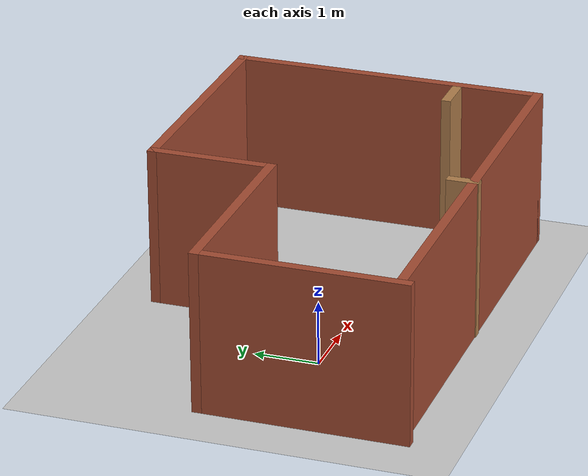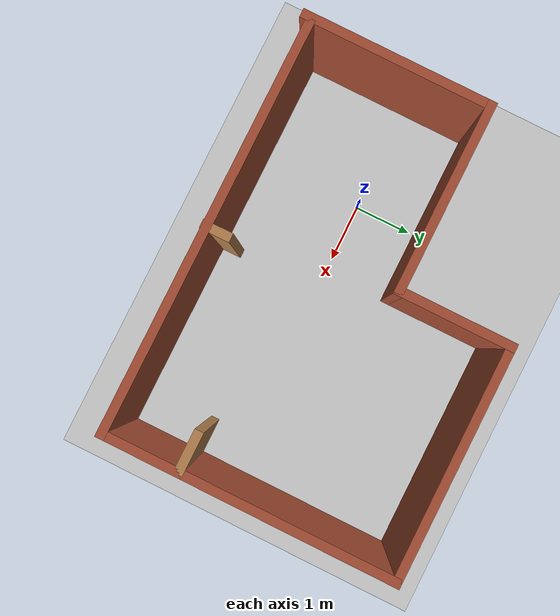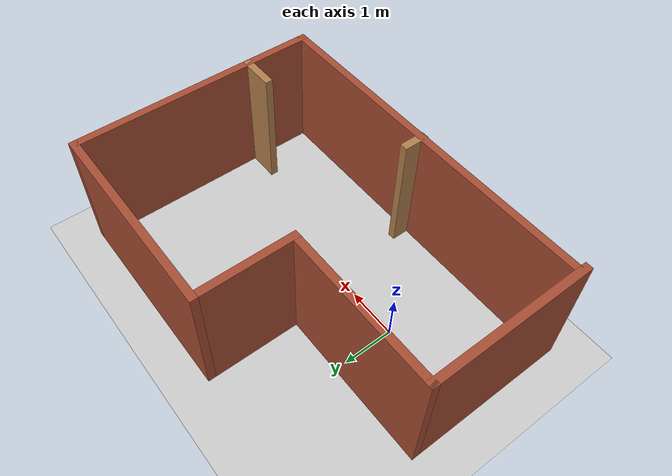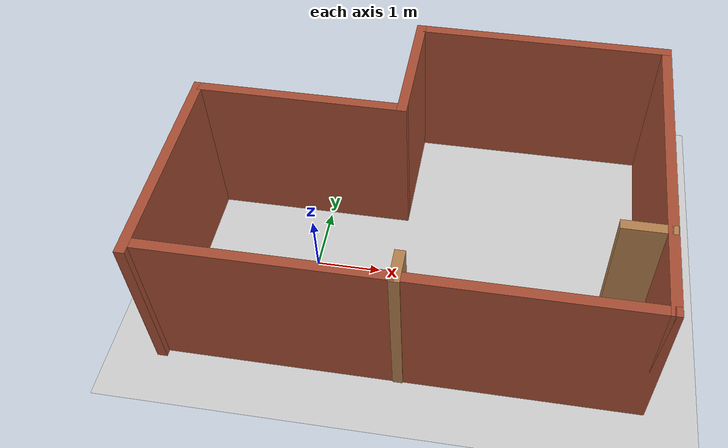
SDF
<sdf version="1.7">
 <world name="default">
  <light name="sun" type="directional">
   <pose>0 0 10 0 -0 0</pose>
   <diffuse>0.8 0.8 0.8 1</diffuse>
   <specular>0.2 0.2 0.2 1</specular>
   <attenuation>
    <range>1000</range>
    <constant>0.9</constant>
    <linear>0.01</linear>
    <quadratic>0.001</quadratic>
   </attenuation>
   <direction>-0.5 0.1 -0.9</direction>
   <spot><inner_angle>0</inner_angle><outer_angle>0</outer_angle><falloff>0</falloff></spot>
  </light>
  <model name="ground_plane">
   <static>1</static>
   <link name="link">
    <collision name="collision">
     <geometry><plane><normal>0 0 1</normal><size>100 100</size></plane></geometry>
     <surface>
      <contact><collide_bitmask>65535</collide_bitmask></contact>
      <friction><ode><mu>100</mu><mu2>50</mu2></ode></friction>
     </surface>
    </collision>
    <visual name="visual">
     <cast_shadows>0</cast_shadows>
     <geometry><plane><normal>0 0 1</normal><size>100 100</size></plane></geometry>
     <material>
      <script><uri>file://media/materials/scripts/gazebo.material</uri><name>Gazebo/Grey</name></script>
     </material>
    </visual>
   </link>
  </model>
  <gravity>0 0 -9.8</gravity>
  <magnetic_field>6e-06 2.3e-05 -4.2e-05</magnetic_field>
  <atmosphere type="adiabatic"/>
  <physics type="ode">
   <max_step_size>0.001</max_step_size>
   <real_time_factor>1</real_time_factor>
   <real_time_update_rate>1000</real_time_update_rate>
  </physics>
  <scene><ambient>0.4 0.4 0.4 1</ambient><background>0.7 0.7 0.7 1</background><shadows>1</shadows></scene>
  <spherical_coordinates>
   <surface_model>EARTH_WGS84</surface_model>
   <latitude_deg>0</latitude_deg>
   <longitude_deg>0</longitude_deg>
   <elevation>0</elevation>
   <heading_deg>0</heading_deg>
  </spherical_coordinates>
  <model name="train-world-3">
   <pose>1.58029 0.579699 0 0 -0 0</pose>
   <link name="Wall_0">
    <collision name="Wall_0_Collision">
     <geometry><box><size>7 0.15 2.5</size></box></geometry>
     <pose>0 0 1.25 0 -0 0</pose>
    </collision>
    <visual name="Wall_0_Visual">
     <pose>0 0 1.25 0 -0 0</pose>
     <geometry><box><size>7 0.15 2.5</size></box></geometry>
     <material>
      <script><uri>file://media/materials/scripts/gazebo.material</uri><name>Gazebo/Bricks</name></script>
      <ambient>1 1 1 1</ambient>
     </material>
     <meta><layer>0</layer></meta>
    </visual>
    <pose>0.05 -2.4225 0 0 -0 0</pose>
   </link>
   <link name="Wall_1">
    <collision name="Wall_1_Collision">
     <geometry><box><size>5 0.15 2.5</size></box></geometry>
     <pose>0 0 1.25 0 -0 0</pose>
    </collision>
    <visual name="Wall_1_Visual">
     <pose>0 0 1.25 0 -0 0</pose>
     <geometry><box><size>5 0.15 2.5</size></box></geometry>
     <material>
      <script><uri>file://media/materials/scripts/gazebo.material</uri><name>Gazebo/Bricks</name></script>
      <ambient>1 1 1 1</ambient>
     </material>
     <meta><layer>0</layer></meta>
    </visual>
    <pose>3.475 0.0025 0 0 -0 1.5708</pose>
   </link>
   <link name="Wall_11">
    <collision name="Wall_11_Collision">
     <geometry><box><size>0.5 0.15 2.5</size></box></geometry>
     <pose>0 0 1.25 0 -0 0</pose>
    </collision>
    <visual name="Wall_11_Visual">
     <pose>0 0 1.25 0 -0 0</pose>
     <geometry><box><size>0.5 0.15 2.5</size></box></geometry>
     <material>
      <script><uri>file://media/materials/scripts/gazebo.material</uri><name>Gazebo/Wood</name></script>
      <ambient>1 1 1 1</ambient>
     </material>
     <meta><layer>0</layer></meta>
    </visual>
    <pose>0.036965 -2.26229 0 0 -0 1.5708</pose>
   </link>
   <link name="Wall_4">
    <collision name="Wall_4_Collision">
     <geometry><box><size>4 0.15 2.5</size></box></geometry>
     <pose>0 0 1.25 0 -0 0</pose>
    </collision>
    <visual name="Wall_4_Visual">
     <pose>0 0 1.25 0 -0 0</pose>
     <geometry><box><size>4 0.15 2.5</size></box></geometry>
     <material>
      <script><uri>file://media/materials/scripts/gazebo.material</uri><name>Gazebo/Bricks</name></script>
      <ambient>1 1 1 1</ambient>
     </material>
     <meta><layer>0</layer></meta>
    </visual>
    <pose>1.55 2.4275 0 0 -0 3.14159</pose>
   </link>
   <link name="Wall_5">
    <collision name="Wall_5_Collision">
     <geometry><box><size>2 0.15 2.5</size></box></geometry>
     <pose>0 0 1.25 0 -0 0</pose>
    </collision>
    <visual name="Wall_5_Visual">
     <pose>0 0 1.25 0 -0 0</pose>
     <geometry><box><size>2 0.15 2.5</size></box></geometry>
     <material>
      <script><uri>file://media/materials/scripts/gazebo.material</uri><name>Gazebo/Bricks</name></script>
      <ambient>1 1 1 1</ambient>
     </material>
     <meta><layer>0</layer></meta>
    </visual>
    <pose>-0.375 1.5025 0 0 -0 -1.5708</pose>
   </link>
   <link name="Wall_6">
    <collision name="Wall_6_Collision">
     <geometry><box><size>3.25 0.15 2.5</size></box></geometry>
     <pose>0 0 1.25 0 -0 0</pose>
    </collision>
    <visual name="Wall_6_Visual">
     <pose>0 0 1.25 0 -0 0</pose>
     <geometry><box><size>3.25 0.15 2.5</size></box></geometry>
     <material>
      <script><uri>file://media/materials/scripts/gazebo.material</uri><name>Gazebo/Bricks</name></script>
      <ambient>1 1 1 1</ambient>
     </material>
     <meta><layer>0</layer></meta>
    </visual>
    <pose>-1.925 0.5775 0 0 -0 3.14159</pose>
   </link>
   <link name="Wall_7">
    <collision name="Wall_7_Collision">
     <geometry><box><size>3.25 0.15 2.5</size></box></geometry>
     <pose>0 0 1.25 0 -0 0</pose>
    </collision>
    <visual name="Wall_7_Visual">
     <pose>0 0 1.25 0 -0 0</pose>
     <geometry><box><size>3.25 0.15 2.5</size></box></geometry>
     <material>
      <script><uri>file://media/materials/scripts/gazebo.material</uri><name>Gazebo/Bricks</name></script>
      <ambient>1 1 1 1</ambient>
     </material>
     <meta><layer>0</layer></meta>
    </visual>
    <pose>-3.475 -0.9725 0 0 -0 -1.5708</pose>
   </link>
   <link name="Wall_9">
    <collision name="Wall_9_Collision">
     <geometry><box><size>0.75 0.15 2.5</size></box></geometry>
     <pose>0 0 1.25 0 -0 0</pose>
    </collision>
    <visual name="Wall_9_Visual">
     <pose>0 0 1.25 0 -0 0</pose>
     <geometry><box><size>0.75 0.15 2.5</size></box></geometry>
     <material>
      <script><uri>file://media/materials/scripts/gazebo.material</uri><name>Gazebo/Wood</name></script>
      <ambient>1 1 1 1</ambient>
     </material>
     <meta><layer>0</layer></meta>
    </visual>
    <pose>3.16307 -1.1525 0 0 -0 3.14159</pose>
   </link>
   <static>1</static>
  </model>
 </world>
</sdf>
